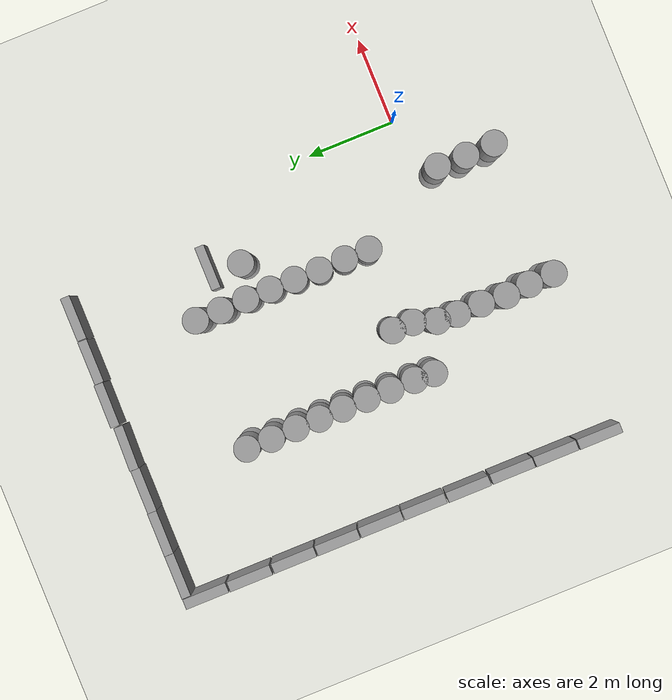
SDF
<sdf version="1.6">
 <world name="default">
  <model name="ground_plane">
   <static>1</static>
   <static>1</static>
   <link name="link">
    <collision name="collision">
     <geometry><plane><normal>0 0 1</normal><size>100 100</size></plane></geometry>
     <surface><friction><ode><mu>100</mu><mu2>50</mu2></ode></friction></surface>
    </collision>
    <visual name="visual">
     <cast_shadows>0</cast_shadows>
     <geometry><plane><normal>0 0 1</normal><size>100 100</size></plane></geometry>
     <material>
      <script><uri>file://media/materials/scripts/gazebo.material</uri><name>Gazebo/Grey</name></script>
     </material>
    </visual>
   </link>
  </model>
  <model name="unit_box_clone">
   <pose>-7.49845 8.11998 0.5 0 -0 0.000212</pose>
   <link name="link">
    <inertial>
     <mass>1</mass>
     <inertia>
      <ixx>0.166667</ixx>
      <ixy>0</ixy>
      <ixz>0</ixz>
      <iyy>0.166667</iyy>
      <iyz>0</iyz>
      <izz>0.166667</izz>
     </inertia>
    </inertial>
    <collision name="collision"><geometry><box><size>1 0.210541 1</size></box></geometry></collision>
    <visual name="visual">
     <geometry><box><size>1 0.210541 1</size></box></geometry>
     <material>
      <script><name>Gazebo/Grey</name><uri>file://media/materials/scripts/gazebo.material</uri></script>
     </material>
    </visual>
   </link>
  </model>
  <model name="unit_box_clone_0">
   <pose>-6.49721 8.1197 0.5 -0 -0 -0.002586</pose>
   <link name="link">
    <inertial>
     <mass>1</mass>
     <inertia>
      <ixx>0.166667</ixx>
      <ixy>0</ixy>
      <ixz>0</ixz>
      <iyy>0.166667</iyy>
      <iyz>0</iyz>
      <izz>0.166667</izz>
     </inertia>
    </inertial>
    <collision name="collision"><geometry><box><size>1 0.210541 1</size></box></geometry></collision>
    <visual name="visual">
     <geometry><box><size>1 0.210541 1</size></box></geometry>
     <material>
      <script><name>Gazebo/Grey</name><uri>file://media/materials/scripts/gazebo.material</uri></script>
     </material>
    </visual>
   </link>
  </model>
  <model name="unit_box_clone_1">
   <pose>-5.49724 8.10823 0.5 0 -0 -0.002585</pose>
   <link name="link">
    <inertial>
     <mass>1</mass>
     <inertia>
      <ixx>0.166667</ixx>
      <ixy>0</ixy>
      <ixz>0</ixz>
      <iyy>0.166667</iyy>
      <iyz>0</iyz>
      <izz>0.166667</izz>
     </inertia>
    </inertial>
    <collision name="collision"><geometry><box><size>1 0.210541 1</size></box></geometry></collision>
    <visual name="visual">
     <geometry><box><size>1 0.210541 1</size></box></geometry>
     <material>
      <script><name>Gazebo/Grey</name><uri>file://media/materials/scripts/gazebo.material</uri></script>
     </material>
    </visual>
   </link>
  </model>
  <model name="unit_box_clone_2">
   <pose>-4.49476 8.11056 0.5 -0 -0 -0.027056</pose>
   <link name="link">
    <inertial>
     <mass>1</mass>
     <inertia>
      <ixx>0.166667</ixx>
      <ixy>0</ixy>
      <ixz>0</ixz>
      <iyy>0.166667</iyy>
      <iyz>0</iyz>
      <izz>0.166667</izz>
     </inertia>
    </inertial>
    <collision name="collision"><geometry><box><size>1 0.210541 1</size></box></geometry></collision>
    <visual name="visual">
     <geometry><box><size>1 0.210541 1</size></box></geometry>
     <material>
      <script><name>Gazebo/Grey</name><uri>file://media/materials/scripts/gazebo.material</uri></script>
     </material>
    </visual>
   </link>
  </model>
  <model name="unit_box_clone_3">
   <pose>-3.46832 8.14916 0.499999 -1e-06 2e-06 -0.008226</pose>
   <link name="link">
    <inertial>
     <mass>1</mass>
     <inertia>
      <ixx>0.166667</ixx>
      <ixy>0</ixy>
      <ixz>0</ixz>
      <iyy>0.166667</iyy>
      <iyz>0</iyz>
      <izz>0.166667</izz>
     </inertia>
    </inertial>
    <collision name="collision"><geometry><box><size>1 0.210541 1</size></box></geometry></collision>
    <visual name="visual">
     <geometry><box><size>1 0.210541 1</size></box></geometry>
     <material>
      <script><name>Gazebo/Grey</name><uri>file://media/materials/scripts/gazebo.material</uri></script>
     </material>
    </visual>
   </link>
  </model>
  <model name="unit_box_clone_4">
   <pose>-2.46316 8.11867 0.5 0 -0 0.000212</pose>
   <link name="link">
    <inertial>
     <mass>1</mass>
     <inertia>
      <ixx>0.166667</ixx>
      <ixy>0</ixy>
      <ixz>0</ixz>
      <iyy>0.166667</iyy>
      <iyz>0</iyz>
      <izz>0.166667</izz>
     </inertia>
    </inertial>
    <collision name="collision"><geometry><box><size>1 0.210541 1</size></box></geometry></collision>
    <visual name="visual">
     <geometry><box><size>1 0.210541 1</size></box></geometry>
     <material>
      <script><name>Gazebo/Grey</name><uri>file://media/materials/scripts/gazebo.material</uri></script>
     </material>
    </visual>
   </link>
  </model>
  <model name="unit_box_clone_5">
   <pose>-1.44425 8.11201 0.5 0 -0 0.000212</pose>
   <link name="link">
    <inertial>
     <mass>1</mass>
     <inertia>
      <ixx>0.166667</ixx>
      <ixy>0</ixy>
      <ixz>0</ixz>
      <iyy>0.166667</iyy>
      <iyz>0</iyz>
      <izz>0.166667</izz>
     </inertia>
    </inertial>
    <collision name="collision"><geometry><box><size>1 0.210541 1</size></box></geometry></collision>
    <visual name="visual">
     <geometry><box><size>1 0.210541 1</size></box></geometry>
     <material>
      <script><name>Gazebo/Grey</name><uri>file://media/materials/scripts/gazebo.material</uri></script>
     </material>
    </visual>
   </link>
  </model>
  <model name="unit_box_0_clone_4_clone">
   <pose>-8.12647 7.71768 0.5 0 -0 -1.6e-05</pose>
   <link name="link">
    <inertial>
     <mass>1</mass>
     <inertia>
      <ixx>0.166667</ixx>
      <ixy>0</ixy>
      <ixz>0</ixz>
      <iyy>0.166667</iyy>
      <iyz>0</iyz>
      <izz>0.166667</izz>
     </inertia>
    </inertial>
    <collision name="collision"><geometry><box><size>0.230819 1 1</size></box></geometry></collision>
    <visual name="visual">
     <geometry><box><size>0.230819 1 1</size></box></geometry>
     <material>
      <script><name>Gazebo/Grey</name><uri>file://media/materials/scripts/gazebo.material</uri></script>
     </material>
    </visual>
   </link>
  </model>
  <model name="unit_box_0_clone_4_clone_0">
   <pose>-8.13281 6.68714 0.5 0 -0 -1.6e-05</pose>
   <link name="link">
    <inertial>
     <mass>1</mass>
     <inertia>
      <ixx>0.166667</ixx>
      <ixy>0</ixy>
      <ixz>0</ixz>
      <iyy>0.166667</iyy>
      <iyz>0</iyz>
      <izz>0.166667</izz>
     </inertia>
    </inertial>
    <collision name="collision"><geometry><box><size>0.230819 1 1</size></box></geometry></collision>
    <visual name="visual">
     <geometry><box><size>0.230819 1 1</size></box></geometry>
     <material>
      <script><name>Gazebo/Grey</name><uri>file://media/materials/scripts/gazebo.material</uri></script>
     </material>
    </visual>
   </link>
  </model>
  <model name="unit_box_0_clone_4_clone_1">
   <pose>-8.12606 5.64722 0.5 0 -0 -1.6e-05</pose>
   <link name="link">
    <inertial>
     <mass>1</mass>
     <inertia>
      <ixx>0.166667</ixx>
      <ixy>0</ixy>
      <ixz>0</ixz>
      <iyy>0.166667</iyy>
      <iyz>0</iyz>
      <izz>0.166667</izz>
     </inertia>
    </inertial>
    <collision name="collision"><geometry><box><size>0.230819 1 1</size></box></geometry></collision>
    <visual name="visual">
     <geometry><box><size>0.230819 1 1</size></box></geometry>
     <material>
      <script><name>Gazebo/Grey</name><uri>file://media/materials/scripts/gazebo.material</uri></script>
     </material>
    </visual>
   </link>
  </model>
  <model name="unit_box_0_clone_4_clone_2">
   <pose>-8.12607 4.6208 0.5 0 -0 -1.6e-05</pose>
   <link name="link">
    <inertial>
     <mass>1</mass>
     <inertia>
      <ixx>0.166667</ixx>
      <ixy>0</ixy>
      <ixz>0</ixz>
      <iyy>0.166667</iyy>
      <iyz>0</iyz>
      <izz>0.166667</izz>
     </inertia>
    </inertial>
    <collision name="collision"><geometry><box><size>0.230819 1 1</size></box></geometry></collision>
    <visual name="visual">
     <geometry><box><size>0.230819 1 1</size></box></geometry>
     <material>
      <script><name>Gazebo/Grey</name><uri>file://media/materials/scripts/gazebo.material</uri></script>
     </material>
    </visual>
   </link>
  </model>
  <model name="unit_box_0_clone_4_clone_3">
   <pose>-8.11932 3.59438 0.5 0 -0 -1.6e-05</pose>
   <link name="link">
    <inertial>
     <mass>1</mass>
     <inertia>
      <ixx>0.166667</ixx>
      <ixy>0</ixy>
      <ixz>0</ixz>
      <iyy>0.166667</iyy>
      <iyz>0</iyz>
      <izz>0.166667</izz>
     </inertia>
    </inertial>
    <collision name="collision"><geometry><box><size>0.230819 1 1</size></box></geometry></collision>
    <visual name="visual">
     <geometry><box><size>0.230819 1 1</size></box></geometry>
     <material>
      <script><name>Gazebo/Grey</name><uri>file://media/materials/scripts/gazebo.material</uri></script>
     </material>
    </visual>
   </link>
  </model>
  <model name="unit_box_0_clone_4_clone_4">
   <pose>-8.11932 2.57472 0.5 0 -0 -1.6e-05</pose>
   <link name="link">
    <inertial>
     <mass>1</mass>
     <inertia>
      <ixx>0.166667</ixx>
      <ixy>0</ixy>
      <ixz>0</ixz>
      <iyy>0.166667</iyy>
      <iyz>0</iyz>
      <izz>0.166667</izz>
     </inertia>
    </inertial>
    <collision name="collision"><geometry><box><size>0.230819 1 1</size></box></geometry></collision>
    <visual name="visual">
     <geometry><box><size>0.230819 1 1</size></box></geometry>
     <material>
      <script><name>Gazebo/Grey</name><uri>file://media/materials/scripts/gazebo.material</uri></script>
     </material>
    </visual>
   </link>
  </model>
  <model name="unit_box_0_clone_4_clone_5">
   <pose>-8.12608 1.54155 0.5 0 -0 -1.6e-05</pose>
   <link name="link">
    <inertial>
     <mass>1</mass>
     <inertia>
      <ixx>0.166667</ixx>
      <ixy>0</ixy>
      <ixz>0</ixz>
      <iyy>0.166667</iyy>
      <iyz>0</iyz>
      <izz>0.166667</izz>
     </inertia>
    </inertial>
    <collision name="collision"><geometry><box><size>0.230819 1 1</size></box></geometry></collision>
    <visual name="visual">
     <geometry><box><size>0.230819 1 1</size></box></geometry>
     <material>
      <script><name>Gazebo/Grey</name><uri>file://media/materials/scripts/gazebo.material</uri></script>
     </material>
    </visual>
   </link>
  </model>
  <model name="unit_box_0_clone_4_clone_6">
   <pose>-8.11933 0.501621 0.5 0 -0 -1.6e-05</pose>
   <link name="link">
    <inertial>
     <mass>1</mass>
     <inertia>
      <ixx>0.166667</ixx>
      <ixy>0</ixy>
      <ixz>0</ixz>
      <iyy>0.166667</iyy>
      <iyz>0</iyz>
      <izz>0.166667</izz>
     </inertia>
    </inertial>
    <collision name="collision"><geometry><box><size>0.230819 1 1</size></box></geometry></collision>
    <visual name="visual">
     <geometry><box><size>0.230819 1 1</size></box></geometry>
     <material>
      <script><name>Gazebo/Grey</name><uri>file://media/materials/scripts/gazebo.material</uri></script>
     </material>
    </visual>
   </link>
  </model>
  <model name="unit_box_0_clone_4_clone_7">
   <pose>-8.12609 -0.518043 0.5 0 -0 -1.6e-05</pose>
   <link name="link">
    <inertial>
     <mass>1</mass>
     <inertia>
      <ixx>0.166667</ixx>
      <ixy>0</ixy>
      <ixz>0</ixz>
      <iyy>0.166667</iyy>
      <iyz>0</iyz>
      <izz>0.166667</izz>
     </inertia>
    </inertial>
    <collision name="collision"><geometry><box><size>0.230819 1 1</size></box></geometry></collision>
    <visual name="visual">
     <geometry><box><size>0.230819 1 1</size></box></geometry>
     <material>
      <script><name>Gazebo/Grey</name><uri>file://media/materials/scripts/gazebo.material</uri></script>
     </material>
    </visual>
   </link>
  </model>
  <model name="unit_box_0_clone_4_clone_8">
   <pose>-8.13284 -1.54446 0.5 0 -0 -1.6e-05</pose>
   <link name="link">
    <inertial>
     <mass>1</mass>
     <inertia>
      <ixx>0.166667</ixx>
      <ixy>0</ixy>
      <ixz>0</ixz>
      <iyy>0.166667</iyy>
      <iyz>0</iyz>
      <izz>0.166667</izz>
     </inertia>
    </inertial>
    <collision name="collision"><geometry><box><size>0.230819 1 1</size></box></geometry></collision>
    <visual name="visual">
     <geometry><box><size>0.230819 1 1</size></box></geometry>
     <material>
      <script><name>Gazebo/Grey</name><uri>file://media/materials/scripts/gazebo.material</uri></script>
     </material>
    </visual>
   </link>
  </model>
  <model name="unit_cylinder_153_clone_clone_5_clone_clone_13_clone_0_clone_29_clone_32_clone_0_clone_4_clone_46_clone_42_clone_clone_clone_4_clone_2_clone">
   <static>1</static>
   <pose>-5.48848 5.67157 0 0 -0 0</pose>
   <link name="link">
    <inertial>
     <mass>1</mass>
     <inertia><ixx>0.145833</ixx><ixy>0</ixy><ixz>0</ixz><iyy>0.145833</iyy><iyz>0</iyz><izz>0.125</izz></inertia>
    </inertial>
    <collision name="collision">
     <geometry><cylinder><radius>0.295479</radius><length>2.18667</length></cylinder></geometry>
    </collision>
    <visual name="visual">
     <geometry><cylinder><radius>0.295479</radius><length>2.18667</length></cylinder></geometry>
     <material>
      <script><name>Gazebo/Grey</name><uri>file://media/materials/scripts/gazebo.material</uri></script>
     </material>
    </visual>
   </link>
  </model>
  <model name="unit_cylinder_153_clone_clone_5_clone_clone_13_clone_0_clone_29_clone_32_clone_0_clone_4_clone_46_clone_42_clone_clone_clone_4_clone_2_clone_0">
   <static>1</static>
   <pose>-5.49081 5.09286 0 0 -0 0</pose>
   <link name="link">
    <inertial>
     <mass>1</mass>
     <inertia><ixx>0.145833</ixx><ixy>0</ixy><ixz>0</ixz><iyy>0.145833</iyy><iyz>0</iyz><izz>0.125</izz></inertia>
    </inertial>
    <collision name="collision">
     <geometry><cylinder><radius>0.295479</radius><length>2.18667</length></cylinder></geometry>
    </collision>
    <visual name="visual">
     <geometry><cylinder><radius>0.295479</radius><length>2.18667</length></cylinder></geometry>
     <material>
      <script><name>Gazebo/Grey</name><uri>file://media/materials/scripts/gazebo.material</uri></script>
     </material>
    </visual>
   </link>
  </model>
  <model name="unit_cylinder_153_clone_clone_5_clone_clone_13_clone_0_clone_29_clone_32_clone_0_clone_4_clone_46_clone_42_clone_clone_clone_4_clone_2_clone_1">
   <static>1</static>
   <pose>-5.47828 4.51643 0 0 -0 0</pose>
   <link name="link">
    <inertial>
     <mass>1</mass>
     <inertia><ixx>0.145833</ixx><ixy>0</ixy><ixz>0</ixz><iyy>0.145833</iyy><iyz>0</iyz><izz>0.125</izz></inertia>
    </inertial>
    <collision name="collision">
     <geometry><cylinder><radius>0.295479</radius><length>2.18667</length></cylinder></geometry>
    </collision>
    <visual name="visual">
     <geometry><cylinder><radius>0.295479</radius><length>2.18667</length></cylinder></geometry>
     <material>
      <script><name>Gazebo/Grey</name><uri>file://media/materials/scripts/gazebo.material</uri></script>
     </material>
    </visual>
   </link>
  </model>
  <model name="unit_cylinder_153_clone_clone_5_clone_clone_13_clone_0_clone_29_clone_32_clone_0_clone_4_clone_46_clone_42_clone_clone_clone_4_clone_2_clone_2">
   <static>1</static>
   <pose>-5.47829 3.96506 0 0 -0 0</pose>
   <link name="link">
    <inertial>
     <mass>1</mass>
     <inertia><ixx>0.145833</ixx><ixy>0</ixy><ixz>0</ixz><iyy>0.145833</iyy><iyz>0</iyz><izz>0.125</izz></inertia>
    </inertial>
    <collision name="collision">
     <geometry><cylinder><radius>0.295479</radius><length>2.18667</length></cylinder></geometry>
    </collision>
    <visual name="visual">
     <geometry><cylinder><radius>0.295479</radius><length>2.18667</length></cylinder></geometry>
     <material>
      <script><name>Gazebo/Grey</name><uri>file://media/materials/scripts/gazebo.material</uri></script>
     </material>
    </visual>
   </link>
  </model>
  <model name="unit_cylinder_153_clone_clone_5_clone_clone_13_clone_0_clone_29_clone_32_clone_0_clone_4_clone_46_clone_42_clone_clone_clone_4_clone_2_clone_3">
   <static>1</static>
   <pose>-5.46576 3.41369 0 0 -0 0</pose>
   <link name="link">
    <inertial>
     <mass>1</mass>
     <inertia><ixx>0.145833</ixx><ixy>0</ixy><ixz>0</ixz><iyy>0.145833</iyy><iyz>0</iyz><izz>0.125</izz></inertia>
    </inertial>
    <collision name="collision">
     <geometry><cylinder><radius>0.295479</radius><length>2.18667</length></cylinder></geometry>
    </collision>
    <visual name="visual">
     <geometry><cylinder><radius>0.295479</radius><length>2.18667</length></cylinder></geometry>
     <material>
      <script><name>Gazebo/Grey</name><uri>file://media/materials/scripts/gazebo.material</uri></script>
     </material>
    </visual>
   </link>
  </model>
  <model name="unit_cylinder_153_clone_clone_5_clone_clone_13_clone_0_clone_29_clone_32_clone_0_clone_4_clone_46_clone_42_clone_clone_clone_4_clone_2_clone_4">
   <static>1</static>
   <pose>-5.46576 2.84979 0 0 -0 0</pose>
   <link name="link">
    <inertial>
     <mass>1</mass>
     <inertia><ixx>0.145833</ixx><ixy>0</ixy><ixz>0</ixz><iyy>0.145833</iyy><iyz>0</iyz><izz>0.125</izz></inertia>
    </inertial>
    <collision name="collision">
     <geometry><cylinder><radius>0.295479</radius><length>2.18667</length></cylinder></geometry>
    </collision>
    <visual name="visual">
     <geometry><cylinder><radius>0.295479</radius><length>2.18667</length></cylinder></geometry>
     <material>
      <script><name>Gazebo/Grey</name><uri>file://media/materials/scripts/gazebo.material</uri></script>
     </material>
    </visual>
   </link>
  </model>
  <model name="unit_cylinder_153_clone_clone_5_clone_clone_13_clone_0_clone_29_clone_32_clone_0_clone_4_clone_46_clone_42_clone_clone_clone_4_clone_2_clone_5">
   <static>1</static>
   <pose>-5.4783 2.29842 0 0 -0 0</pose>
   <link name="link">
    <inertial>
     <mass>1</mass>
     <inertia><ixx>0.145833</ixx><ixy>0</ixy><ixz>0</ixz><iyy>0.145833</iyy><iyz>0</iyz><izz>0.125</izz></inertia>
    </inertial>
    <collision name="collision">
     <geometry><cylinder><radius>0.295479</radius><length>2.18667</length></cylinder></geometry>
    </collision>
    <visual name="visual">
     <geometry><cylinder><radius>0.295479</radius><length>2.18667</length></cylinder></geometry>
     <material>
      <script><name>Gazebo/Grey</name><uri>file://media/materials/scripts/gazebo.material</uri></script>
     </material>
    </visual>
   </link>
  </model>
  <model name="unit_cylinder_153_clone_clone_5_clone_clone_13_clone_0_clone_29_clone_32_clone_0_clone_4_clone_46_clone_42_clone_clone_clone_4_clone_2_clone_6">
   <static>1</static>
   <pose>-5.4783 1.73453 0 0 -0 0</pose>
   <link name="link">
    <inertial>
     <mass>1</mass>
     <inertia><ixx>0.145833</ixx><ixy>0</ixy><ixz>0</ixz><iyy>0.145833</iyy><iyz>0</iyz><izz>0.125</izz></inertia>
    </inertial>
    <collision name="collision">
     <geometry><cylinder><radius>0.295479</radius><length>2.18667</length></cylinder></geometry>
    </collision>
    <visual name="visual">
     <geometry><cylinder><radius>0.295479</radius><length>2.18667</length></cylinder></geometry>
     <material>
      <script><name>Gazebo/Grey</name><uri>file://media/materials/scripts/gazebo.material</uri></script>
     </material>
    </visual>
   </link>
  </model>
  <model name="unit_cylinder_153_clone_clone_5_clone_clone_13_clone_0_clone_29_clone_32_clone_0_clone_4_clone_46_clone_42_clone_clone_clone_4_clone_2_clone_7">
   <static>1</static>
   <pose>-5.50336 1.28341 0 0 -0 0</pose>
   <link name="link">
    <inertial>
     <mass>1</mass>
     <inertia><ixx>0.145833</ixx><ixy>0</ixy><ixz>0</ixz><iyy>0.145833</iyy><iyz>0</iyz><izz>0.125</izz></inertia>
    </inertial>
    <collision name="collision">
     <geometry><cylinder><radius>0.295479</radius><length>2.18667</length></cylinder></geometry>
    </collision>
    <visual name="visual">
     <geometry><cylinder><radius>0.295479</radius><length>2.18667</length></cylinder></geometry>
     <material>
      <script><name>Gazebo/Grey</name><uri>file://media/materials/scripts/gazebo.material</uri></script>
     </material>
    </visual>
   </link>
  </model>
  <model name="unit_cylinder_153_clone_clone_5_clone_clone_13_clone_0_clone_29_clone_32_clone_0_clone_4_clone_46_clone_42_clone_clone_clone_4_clone_2_clone_8">
   <static>1</static>
   <pose>-4.30038 1.77211 0 0 -0 0</pose>
   <link name="link">
    <inertial>
     <mass>1</mass>
     <inertia><ixx>0.145833</ixx><ixy>0</ixy><ixz>0</ixz><iyy>0.145833</iyy><iyz>0</iyz><izz>0.125</izz></inertia>
    </inertial>
    <collision name="collision">
     <geometry><cylinder><radius>0.295479</radius><length>2.18667</length></cylinder></geometry>
    </collision>
    <visual name="visual">
     <geometry><cylinder><radius>0.295479</radius><length>2.18667</length></cylinder></geometry>
     <material>
      <script><name>Gazebo/Grey</name><uri>file://media/materials/scripts/gazebo.material</uri></script>
     </material>
    </visual>
   </link>
  </model>
  <model name="unit_cylinder_153_clone_clone_5_clone_clone_13_clone_0_clone_29_clone_32_clone_0_clone_4_clone_46_clone_42_clone_clone_clone_4_clone_2_clone_9">
   <static>1</static>
   <pose>-4.30038 1.29593 0 0 -0 0</pose>
   <link name="link">
    <inertial>
     <mass>1</mass>
     <inertia><ixx>0.145833</ixx><ixy>0</ixy><ixz>0</ixz><iyy>0.145833</iyy><iyz>0</iyz><izz>0.125</izz></inertia>
    </inertial>
    <collision name="collision">
     <geometry><cylinder><radius>0.295479</radius><length>2.18667</length></cylinder></geometry>
    </collision>
    <visual name="visual">
     <geometry><cylinder><radius>0.295479</radius><length>2.18667</length></cylinder></geometry>
     <material>
      <script><name>Gazebo/Grey</name><uri>file://media/materials/scripts/gazebo.material</uri></script>
     </material>
    </visual>
   </link>
  </model>
  <model name="unit_cylinder_153_clone_clone_5_clone_clone_13_clone_0_clone_29_clone_32_clone_0_clone_4_clone_46_clone_42_clone_clone_clone_4_clone_2_clone_10">
   <static>1</static>
   <pose>-4.47582 0.794688 0 0 -0 0</pose>
   <link name="link">
    <inertial>
     <mass>1</mass>
     <inertia><ixx>0.145833</ixx><ixy>0</ixy><ixz>0</ixz><iyy>0.145833</iyy><iyz>0</iyz><izz>0.125</izz></inertia>
    </inertial>
    <collision name="collision">
     <geometry><cylinder><radius>0.295479</radius><length>2.18667</length></cylinder></geometry>
    </collision>
    <visual name="visual">
     <geometry><cylinder><radius>0.295479</radius><length>2.18667</length></cylinder></geometry>
     <material>
      <script><name>Gazebo/Grey</name><uri>file://media/materials/scripts/gazebo.material</uri></script>
     </material>
    </visual>
   </link>
  </model>
  <model name="unit_cylinder_153_clone_clone_5_clone_clone_13_clone_0_clone_29_clone_32_clone_0_clone_4_clone_46_clone_42_clone_clone_clone_4_clone_2_clone_11">
   <static>1</static>
   <pose>-4.50088 0.331037 0 0 -0 0</pose>
   <link name="link">
    <inertial>
     <mass>1</mass>
     <inertia><ixx>0.145833</ixx><ixy>0</ixy><ixz>0</ixz><iyy>0.145833</iyy><iyz>0</iyz><izz>0.125</izz></inertia>
    </inertial>
    <collision name="collision">
     <geometry><cylinder><radius>0.295479</radius><length>2.18667</length></cylinder></geometry>
    </collision>
    <visual name="visual">
     <geometry><cylinder><radius>0.295479</radius><length>2.18667</length></cylinder></geometry>
     <material>
      <script><name>Gazebo/Grey</name><uri>file://media/materials/scripts/gazebo.material</uri></script>
     </material>
    </visual>
   </link>
  </model>
  <model name="unit_cylinder_153_clone_clone_5_clone_clone_13_clone_0_clone_29_clone_32_clone_0_clone_4_clone_46_clone_42_clone_clone_clone_4_clone_2_clone_12">
   <static>1</static>
   <pose>-4.48835 -0.232862 0 0 -0 0</pose>
   <link name="link">
    <inertial>
     <mass>1</mass>
     <inertia><ixx>0.145833</ixx><ixy>0</ixy><ixz>0</ixz><iyy>0.145833</iyy><iyz>0</iyz><izz>0.125</izz></inertia>
    </inertial>
    <collision name="collision">
     <geometry><cylinder><radius>0.295479</radius><length>2.18667</length></cylinder></geometry>
    </collision>
    <visual name="visual">
     <geometry><cylinder><radius>0.295479</radius><length>2.18667</length></cylinder></geometry>
     <material>
      <script><name>Gazebo/Grey</name><uri>file://media/materials/scripts/gazebo.material</uri></script>
     </material>
    </visual>
   </link>
  </model>
  <model name="unit_cylinder_153_clone_clone_5_clone_clone_13_clone_0_clone_29_clone_32_clone_0_clone_4_clone_46_clone_42_clone_clone_clone_4_clone_2_clone_13">
   <static>1</static>
   <pose>-4.52595 -0.809293 0 0 -0 0</pose>
   <link name="link">
    <inertial>
     <mass>1</mass>
     <inertia><ixx>0.145833</ixx><ixy>0</ixy><ixz>0</ixz><iyy>0.145833</iyy><iyz>0</iyz><izz>0.125</izz></inertia>
    </inertial>
    <collision name="collision">
     <geometry><cylinder><radius>0.295479</radius><length>2.18667</length></cylinder></geometry>
    </collision>
    <visual name="visual">
     <geometry><cylinder><radius>0.295479</radius><length>2.18667</length></cylinder></geometry>
     <material>
      <script><name>Gazebo/Grey</name><uri>file://media/materials/scripts/gazebo.material</uri></script>
     </material>
    </visual>
   </link>
  </model>
  <model name="unit_cylinder_153_clone_clone_5_clone_clone_13_clone_0_clone_29_clone_32_clone_0_clone_4_clone_46_clone_42_clone_clone_clone_4_clone_2_clone_14">
   <static>1</static>
   <pose>-4.48836 -1.36066 0 0 -0 0</pose>
   <link name="link">
    <inertial>
     <mass>1</mass>
     <inertia><ixx>0.145833</ixx><ixy>0</ixy><ixz>0</ixz><iyy>0.145833</iyy><iyz>0</iyz><izz>0.125</izz></inertia>
    </inertial>
    <collision name="collision">
     <geometry><cylinder><radius>0.295479</radius><length>2.18667</length></cylinder></geometry>
    </collision>
    <visual name="visual">
     <geometry><cylinder><radius>0.295479</radius><length>2.18667</length></cylinder></geometry>
     <material>
      <script><name>Gazebo/Grey</name><uri>file://media/materials/scripts/gazebo.material</uri></script>
     </material>
    </visual>
   </link>
  </model>
  <model name="unit_cylinder_153_clone_clone_5_clone_clone_13_clone_0_clone_29_clone_32_clone_0_clone_4_clone_46_clone_42_clone_clone_clone_4_clone_2_clone_15">
   <static>1</static>
   <pose>-4.47583 -1.93709 0 0 -0 0</pose>
   <link name="link">
    <inertial>
     <mass>1</mass>
     <inertia><ixx>0.145833</ixx><ixy>0</ixy><ixz>0</ixz><iyy>0.145833</iyy><iyz>0</iyz><izz>0.125</izz></inertia>
    </inertial>
    <collision name="collision">
     <geometry><cylinder><radius>0.295479</radius><length>2.18667</length></cylinder></geometry>
    </collision>
    <visual name="visual">
     <geometry><cylinder><radius>0.295479</radius><length>2.18667</length></cylinder></geometry>
     <material>
      <script><name>Gazebo/Grey</name><uri>file://media/materials/scripts/gazebo.material</uri></script>
     </material>
    </visual>
   </link>
  </model>
  <model name="unit_cylinder_153_clone_clone_5_clone_clone_13_clone_0_clone_29_clone_32_clone_0_clone_4_clone_46_clone_42_clone_clone_clone_4_clone_2_clone_22">
   <static>1</static>
   <pose>-2.48903 5.65487 0 0 -0 0</pose>
   <link name="link">
    <inertial>
     <mass>1</mass>
     <inertia><ixx>0.145833</ixx><ixy>0</ixy><ixz>0</ixz><iyy>0.145833</iyy><iyz>0</iyz><izz>0.125</izz></inertia>
    </inertial>
    <collision name="collision">
     <geometry><cylinder><radius>0.295479</radius><length>2.18667</length></cylinder></geometry>
    </collision>
    <visual name="visual">
     <geometry><cylinder><radius>0.295479</radius><length>2.18667</length></cylinder></geometry>
     <material>
      <script><name>Gazebo/Grey</name><uri>file://media/materials/scripts/gazebo.material</uri></script>
     </material>
    </visual>
   </link>
  </model>
  <model name="unit_cylinder_153_clone_clone_5_clone_clone_13_clone_0_clone_29_clone_32_clone_0_clone_4_clone_46_clone_42_clone_clone_clone_4_clone_2_clone_23">
   <static>1</static>
   <pose>-2.48903 5.0711 0 0 -0 0</pose>
   <link name="link">
    <inertial>
     <mass>1</mass>
     <inertia><ixx>0.145833</ixx><ixy>0</ixy><ixz>0</ixz><iyy>0.145833</iyy><iyz>0</iyz><izz>0.125</izz></inertia>
    </inertial>
    <collision name="collision">
     <geometry><cylinder><radius>0.295479</radius><length>2.18667</length></cylinder></geometry>
    </collision>
    <visual name="visual">
     <geometry><cylinder><radius>0.295479</radius><length>2.18667</length></cylinder></geometry>
     <material>
      <script><name>Gazebo/Grey</name><uri>file://media/materials/scripts/gazebo.material</uri></script>
     </material>
    </visual>
   </link>
  </model>
  <model name="unit_cylinder_153_clone_clone_5_clone_clone_13_clone_0_clone_29_clone_32_clone_0_clone_4_clone_46_clone_42_clone_clone_clone_4_clone_2_clone_24">
   <static>1</static>
   <pose>-2.47235 4.47066 0 0 -0 0</pose>
   <link name="link">
    <inertial>
     <mass>1</mass>
     <inertia><ixx>0.145833</ixx><ixy>0</ixy><ixz>0</ixz><iyy>0.145833</iyy><iyz>0</iyz><izz>0.125</izz></inertia>
    </inertial>
    <collision name="collision">
     <geometry><cylinder><radius>0.295479</radius><length>2.18667</length></cylinder></geometry>
    </collision>
    <visual name="visual">
     <geometry><cylinder><radius>0.295479</radius><length>2.18667</length></cylinder></geometry>
     <material>
      <script><name>Gazebo/Grey</name><uri>file://media/materials/scripts/gazebo.material</uri></script>
     </material>
    </visual>
   </link>
  </model>
  <model name="unit_cylinder_153_clone_clone_5_clone_clone_13_clone_0_clone_29_clone_32_clone_0_clone_4_clone_46_clone_42_clone_clone_clone_4_clone_2_clone_25">
   <static>1</static>
   <pose>-2.47236 3.90358 0 0 -0 0</pose>
   <link name="link">
    <inertial>
     <mass>1</mass>
     <inertia><ixx>0.145833</ixx><ixy>0</ixy><ixz>0</ixz><iyy>0.145833</iyy><iyz>0</iyz><izz>0.125</izz></inertia>
    </inertial>
    <collision name="collision">
     <geometry><cylinder><radius>0.295479</radius><length>2.18667</length></cylinder></geometry>
    </collision>
    <visual name="visual">
     <geometry><cylinder><radius>0.295479</radius><length>2.18667</length></cylinder></geometry>
     <material>
      <script><name>Gazebo/Grey</name><uri>file://media/materials/scripts/gazebo.material</uri></script>
     </material>
    </visual>
   </link>
  </model>
  <model name="unit_cylinder_153_clone_clone_5_clone_clone_13_clone_0_clone_29_clone_32_clone_0_clone_4_clone_46_clone_42_clone_clone_clone_4_clone_2_clone_26">
   <static>1</static>
   <pose>-2.47236 3.3365 0 0 -0 0</pose>
   <link name="link">
    <inertial>
     <mass>1</mass>
     <inertia><ixx>0.145833</ixx><ixy>0</ixy><ixz>0</ixz><iyy>0.145833</iyy><iyz>0</iyz><izz>0.125</izz></inertia>
    </inertial>
    <collision name="collision">
     <geometry><cylinder><radius>0.295479</radius><length>2.18667</length></cylinder></geometry>
    </collision>
    <visual name="visual">
     <geometry><cylinder><radius>0.295479</radius><length>2.18667</length></cylinder></geometry>
     <material>
      <script><name>Gazebo/Grey</name><uri>file://media/materials/scripts/gazebo.material</uri></script>
     </material>
    </visual>
   </link>
  </model>
  <model name="unit_cylinder_153_clone_clone_5_clone_clone_13_clone_0_clone_29_clone_32_clone_0_clone_4_clone_46_clone_42_clone_clone_clone_4_clone_2_clone_27">
   <static>1</static>
   <pose>-2.48904 2.75274 0 0 -0 0</pose>
   <link name="link">
    <inertial>
     <mass>1</mass>
     <inertia><ixx>0.145833</ixx><ixy>0</ixy><ixz>0</ixz><iyy>0.145833</iyy><iyz>0</iyz><izz>0.125</izz></inertia>
    </inertial>
    <collision name="collision">
     <geometry><cylinder><radius>0.295479</radius><length>2.18667</length></cylinder></geometry>
    </collision>
    <visual name="visual">
     <geometry><cylinder><radius>0.295479</radius><length>2.18667</length></cylinder></geometry>
     <material>
      <script><name>Gazebo/Grey</name><uri>file://media/materials/scripts/gazebo.material</uri></script>
     </material>
    </visual>
   </link>
  </model>
  <model name="unit_cylinder_153_clone_clone_5_clone_clone_13_clone_0_clone_29_clone_32_clone_0_clone_4_clone_46_clone_42_clone_clone_clone_4_clone_2_clone_28">
   <static>1</static>
   <pose>-2.47237 2.1523 0 0 -0 0</pose>
   <link name="link">
    <inertial>
     <mass>1</mass>
     <inertia><ixx>0.145833</ixx><ixy>0</ixy><ixz>0</ixz><iyy>0.145833</iyy><iyz>0</iyz><izz>0.125</izz></inertia>
    </inertial>
    <collision name="collision">
     <geometry><cylinder><radius>0.295479</radius><length>2.18667</length></cylinder></geometry>
    </collision>
    <visual name="visual">
     <geometry><cylinder><radius>0.295479</radius><length>2.18667</length></cylinder></geometry>
     <material>
      <script><name>Gazebo/Grey</name><uri>file://media/materials/scripts/gazebo.material</uri></script>
     </material>
    </visual>
   </link>
  </model>
  <model name="unit_cylinder_153_clone_clone_5_clone_clone_13_clone_0_clone_29_clone_32_clone_0_clone_4_clone_46_clone_42_clone_clone_clone_4_clone_2_clone_29">
   <static>1</static>
   <pose>-2.47237 1.58522 0 0 -0 0</pose>
   <link name="link">
    <inertial>
     <mass>1</mass>
     <inertia><ixx>0.145833</ixx><ixy>0</ixy><ixz>0</ixz><iyy>0.145833</iyy><iyz>0</iyz><izz>0.125</izz></inertia>
    </inertial>
    <collision name="collision">
     <geometry><cylinder><radius>0.295479</radius><length>2.18667</length></cylinder></geometry>
    </collision>
    <visual name="visual">
     <geometry><cylinder><radius>0.295479</radius><length>2.18667</length></cylinder></geometry>
     <material>
      <script><name>Gazebo/Grey</name><uri>file://media/materials/scripts/gazebo.material</uri></script>
     </material>
    </visual>
   </link>
  </model>
  <model name="unit_cylinder_153_clone_clone_5_clone_clone_13_clone_0_clone_29_clone_32_clone_0_clone_4_clone_46_clone_42_clone_clone_clone_4_clone_2_clone_29_clone_1">
   <static>1</static>
   <pose>-1.3649 -0.477136 0 0 -0 0</pose>
   <link name="link">
    <inertial>
     <mass>1</mass>
     <inertia><ixx>0.145833</ixx><ixy>0</ixy><ixz>0</ixz><iyy>0.145833</iyy><iyz>0</iyz><izz>0.125</izz></inertia>
    </inertial>
    <collision name="collision">
     <geometry><cylinder><radius>0.295479</radius><length>2.18667</length></cylinder></geometry>
    </collision>
    <visual name="visual">
     <geometry><cylinder><radius>0.295479</radius><length>2.18667</length></cylinder></geometry>
     <material>
      <script><name>Gazebo/Grey</name><uri>file://media/materials/scripts/gazebo.material</uri></script>
     </material>
    </visual>
   </link>
  </model>
  <model name="unit_cylinder_153_clone_clone_5_clone_clone_13_clone_0_clone_29_clone_32_clone_0_clone_4_clone_46_clone_42_clone_clone_clone_4_clone_2_clone_29_clone_2">
   <static>1</static>
   <pose>-1.37842 -1.13912 0 0 -0 0</pose>
   <link name="link">
    <inertial>
     <mass>1</mass>
     <inertia><ixx>0.145833</ixx><ixy>0</ixy><ixz>0</ixz><iyy>0.145833</iyy><iyz>0</iyz><izz>0.125</izz></inertia>
    </inertial>
    <collision name="collision">
     <geometry><cylinder><radius>0.295479</radius><length>2.18667</length></cylinder></geometry>
    </collision>
    <visual name="visual">
     <geometry><cylinder><radius>0.295479</radius><length>2.18667</length></cylinder></geometry>
     <material>
      <script><name>Gazebo/Grey</name><uri>file://media/materials/scripts/gazebo.material</uri></script>
     </material>
    </visual>
   </link>
  </model>
  <model name="unit_cylinder_153_clone_clone_5_clone_clone_13_clone_0_clone_29_clone_32_clone_0_clone_4_clone_46_clone_42_clone_clone_clone_4_clone_2_clone_29_clone_3">
   <static>1</static>
   <pose>-1.36491 -1.80111 0 0 -0 0</pose>
   <link name="link">
    <inertial>
     <mass>1</mass>
     <inertia><ixx>0.145833</ixx><ixy>0</ixy><ixz>0</ixz><iyy>0.145833</iyy><iyz>0</iyz><izz>0.125</izz></inertia>
    </inertial>
    <collision name="collision">
     <geometry><cylinder><radius>0.295479</radius><length>2.18667</length></cylinder></geometry>
    </collision>
    <visual name="visual">
     <geometry><cylinder><radius>0.295479</radius><length>2.18667</length></cylinder></geometry>
     <material>
      <script><name>Gazebo/Grey</name><uri>file://media/materials/scripts/gazebo.material</uri></script>
     </material>
    </visual>
   </link>
  </model>
  <model name="unit_box_clone_9_clone_2">
   <pose>-1.51854 4.98627 0.5 0 -0 0.000284</pose>
   <link name="link">
    <inertial>
     <mass>1</mass>
     <inertia>
      <ixx>0.166667</ixx>
      <ixy>0</ixy>
      <ixz>0</ixz>
      <iyy>0.166667</iyy>
      <iyz>0</iyz>
      <izz>0.166667</izz>
     </inertia>
    </inertial>
    <collision name="collision"><geometry><box><size>1 0.210541 1</size></box></geometry></collision>
    <visual name="visual">
     <geometry><box><size>1 0.210541 1</size></box></geometry>
     <material>
      <script><name>Gazebo/Grey</name><uri>file://media/materials/scripts/gazebo.material</uri></script>
     </material>
    </visual>
   </link>
  </model>
  <model name="unit_cylinder_153_clone_clone_5_clone_clone_13_clone_0_clone_29_clone_32_clone_0_clone_4_clone_46_clone_42_clone_clone_clone_4_clone_2_clone_22_clone">
   <static>1</static>
   <pose>-1.70624 4.27724 0 0 -0 0</pose>
   <link name="link">
    <inertial>
     <mass>1</mass>
     <inertia><ixx>0.145833</ixx><ixy>0</ixy><ixz>0</ixz><iyy>0.145833</iyy><iyz>0</iyz><izz>0.125</izz></inertia>
    </inertial>
    <collision name="collision">
     <geometry><cylinder><radius>0.295479</radius><length>2.18667</length></cylinder></geometry>
    </collision>
    <visual name="visual">
     <geometry><cylinder><radius>0.295479</radius><length>2.18667</length></cylinder></geometry>
     <material>
      <script><name>Gazebo/Grey</name><uri>file://media/materials/scripts/gazebo.material</uri></script>
     </material>
    </visual>
   </link>
  </model>
 </world>
</sdf>
